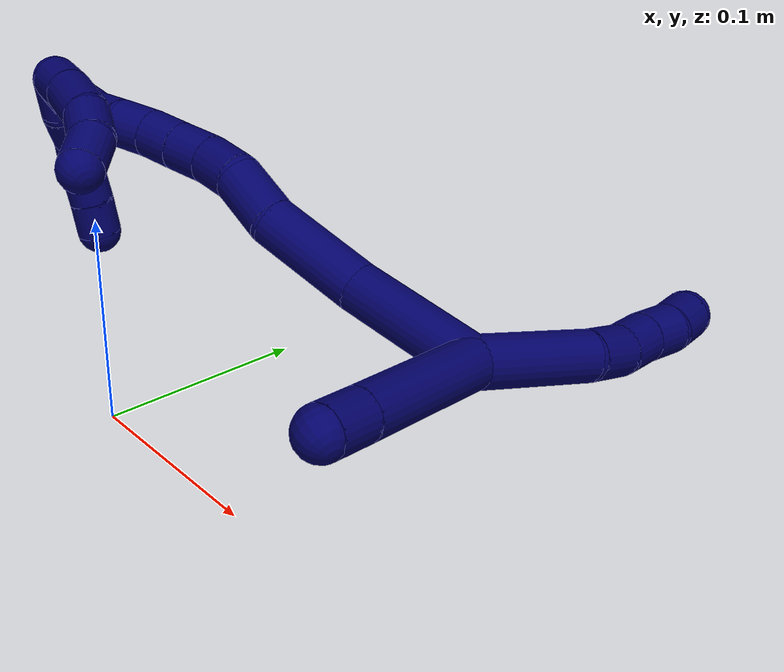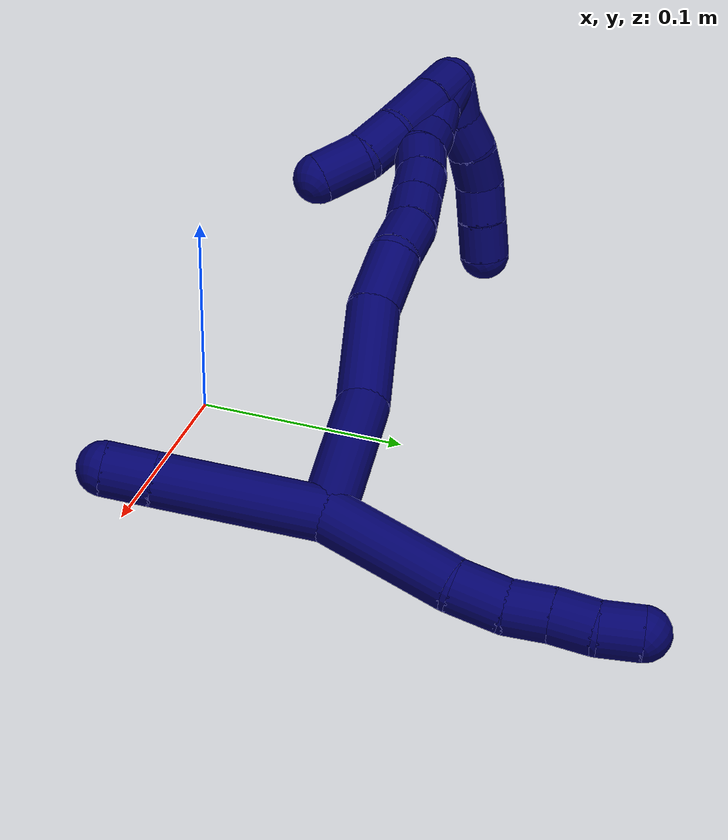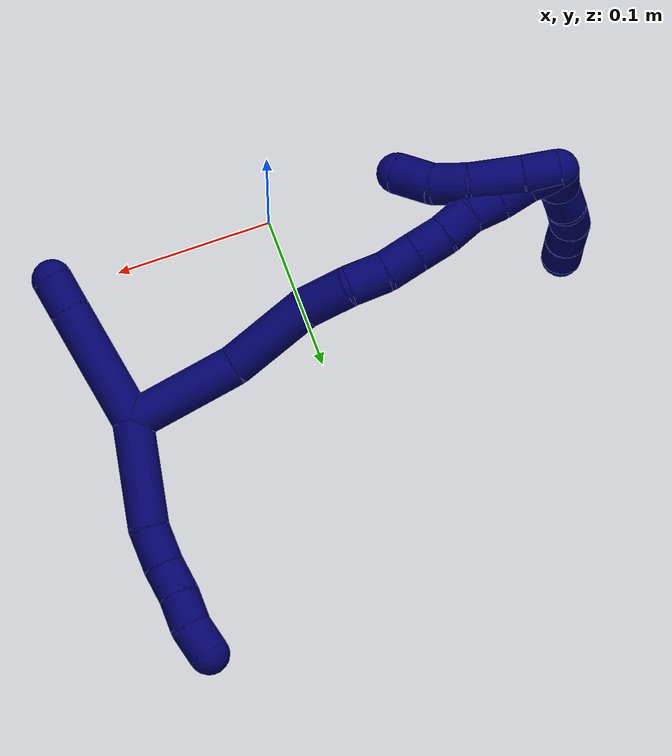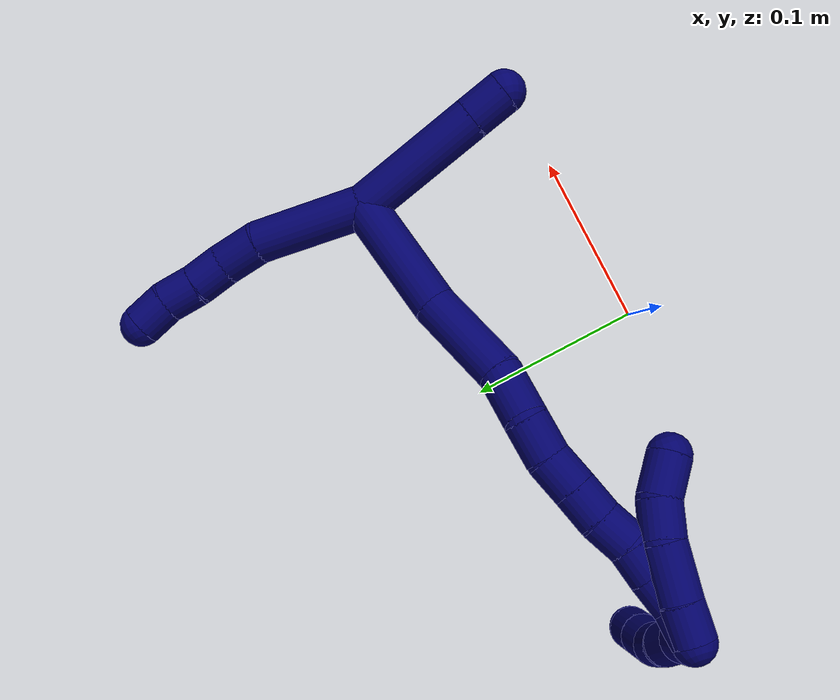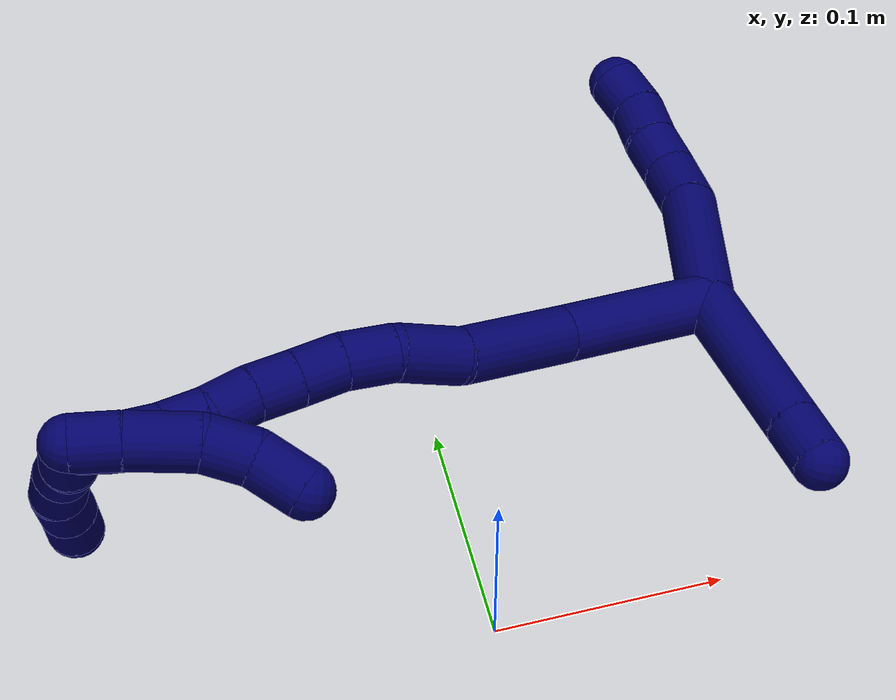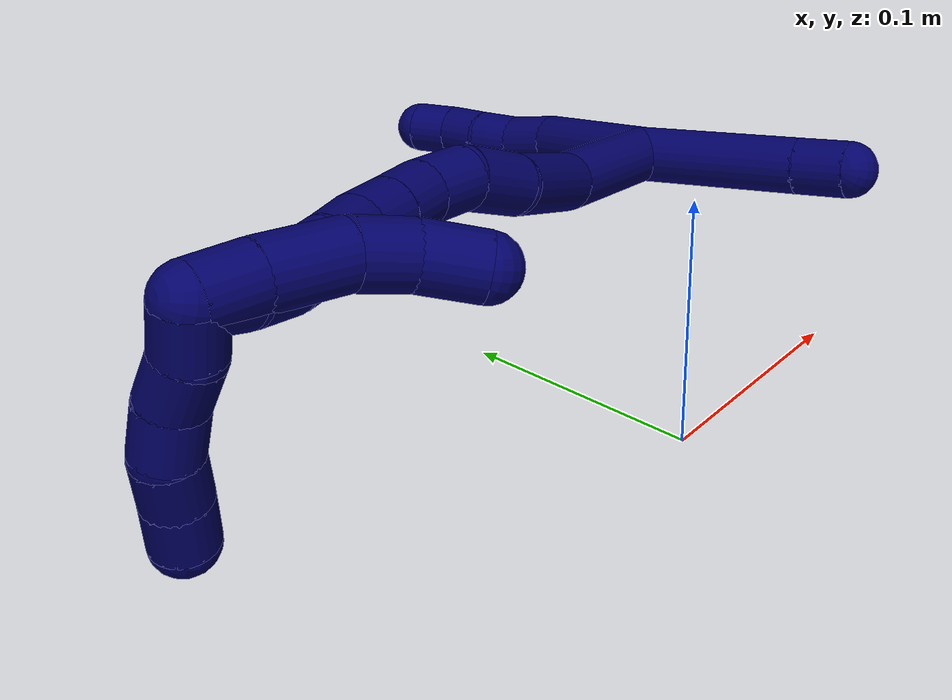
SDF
<sdf version="1.7">
 <world name="default">
  <model name="7">
   <static>0</static>
   <link name="7">
    <collision name="collision-cylinder-e_1_2_8">
     <pose>-0.017476 0.027273 -0.002906 -1.67696 -0.567305 0.627066</pose>
     <geometry><cylinder><radius>0.0125</radius><length>0.065043</length></cylinder></geometry>
     <surface>
      <friction><ode><mu>1.16</mu><mu2>1.16</mu2><slip1>0</slip1><slip2>0</slip2></ode></friction>
      <contact><ode><kp>1e+06</kp><kd>1</kd><max_vel>0</max_vel><min_depth>0.001</min_depth></ode></contact>
     </surface>
    </collision>
    <visual name="visual-cylinder-e_1_2_8">
     <pose>-0.017476 0.027273 -0.002906 -1.67696 -0.567305 0.627066</pose>
     <geometry><cylinder><radius>0.0125</radius><length>0.065043</length></cylinder></geometry>
     <material><ambient>0.003922 0 0.403922 1</ambient></material>
    </visual>
    <collision name="collision-cylinder-e_2_8_9">
     <pose>-0.042576 0.063926 -0.004488 -1.43054 -0.677659 0.594194</pose>
     <geometry><cylinder><radius>0.0125</radius><length>0.024321</length></cylinder></geometry>
     <surface>
      <friction><ode><mu>1.16</mu><mu2>1.16</mu2><slip1>0</slip1><slip2>0</slip2></ode></friction>
      <contact><ode><kp>1e+06</kp><kd>1</kd><max_vel>0</max_vel><min_depth>0.001</min_depth></ode></contact>
     </surface>
    </collision>
    <visual name="visual-cylinder-e_2_8_9">
     <pose>-0.042576 0.063926 -0.004488 -1.43054 -0.677659 0.594194</pose>
     <geometry><cylinder><radius>0.0125</radius><length>0.024321</length></cylinder></geometry>
     <material><ambient>0.003922 0 0.403922 1</ambient></material>
    </visual>
    <collision name="collision-cylinder-e_3_9_10">
     <pose>-0.055314 0.081768 -0.000454 -1.26087 -0.522233 0.385187</pose>
     <geometry><cylinder><radius>0.0125</radius><length>0.020503</length></cylinder></geometry>
     <surface>
      <friction><ode><mu>1.16</mu><mu2>1.16</mu2><slip1>0</slip1><slip2>0</slip2></ode></friction>
      <contact><ode><kp>1e+06</kp><kd>1</kd><max_vel>0</max_vel><min_depth>0.001</min_depth></ode></contact>
     </surface>
    </collision>
    <visual name="visual-cylinder-e_3_9_10">
     <pose>-0.055314 0.081768 -0.000454 -1.26087 -0.522233 0.385187</pose>
     <geometry><cylinder><radius>0.0125</radius><length>0.020503</length></cylinder></geometry>
     <material><ambient>0.003922 0 0.403922 1</ambient></material>
    </visual>
    <collision name="collision-cylinder-e_4_10_11">
     <pose>-0.065443 0.098827 0.003657 -1.4093 -0.522445 0.447011</pose>
     <geometry><cylinder><radius>0.0125</radius><length>0.020102</length></cylinder></geometry>
     <surface>
      <friction><ode><mu>1.16</mu><mu2>1.16</mu2><slip1>0</slip1><slip2>0</slip2></ode></friction>
      <contact><ode><kp>1e+06</kp><kd>1</kd><max_vel>0</max_vel><min_depth>0.001</min_depth></ode></contact>
     </surface>
    </collision>
    <visual name="visual-cylinder-e_4_10_11">
     <pose>-0.065443 0.098827 0.003657 -1.4093 -0.522445 0.447011</pose>
     <geometry><cylinder><radius>0.0125</radius><length>0.020102</length></cylinder></geometry>
     <material><ambient>0.003922 0 0.403922 1</ambient></material>
    </visual>
    <collision name="collision-cylinder-e_5_11_6">
     <pose>-0.075595 0.115248 0.008622 -1.1433 -0.538533 0.351398</pose>
     <geometry><cylinder><radius>0.0125</radius><length>0.020031</length></cylinder></geometry>
     <surface>
      <friction><ode><mu>1.16</mu><mu2>1.16</mu2><slip1>0</slip1><slip2>0</slip2></ode></friction>
      <contact><ode><kp>1e+06</kp><kd>1</kd><max_vel>0</max_vel><min_depth>0.001</min_depth></ode></contact>
     </surface>
    </collision>
    <visual name="visual-cylinder-e_5_11_6">
     <pose>-0.075595 0.115248 0.008622 -1.1433 -0.538533 0.351398</pose>
     <geometry><cylinder><radius>0.0125</radius><length>0.020031</length></cylinder></geometry>
     <material><ambient>0.003922 0 0.403922 1</ambient></material>
    </visual>
    <collision name="collision-cylinder-e_1_2_12">
     <pose>0.021342 -0.030221 -0.010755 1.91269 0.587073 0.809504</pose>
     <geometry><cylinder><radius>0.0125</radius><length>0.077058</length></cylinder></geometry>
     <surface>
      <friction><ode><mu>1.16</mu><mu2>1.16</mu2><slip1>0</slip1><slip2>0</slip2></ode></friction>
      <contact><ode><kp>1e+06</kp><kd>1</kd><max_vel>0</max_vel><min_depth>0.001</min_depth></ode></contact>
     </surface>
    </collision>
    <visual name="visual-cylinder-e_1_2_12">
     <pose>0.021342 -0.030221 -0.010755 1.91269 0.587073 0.809504</pose>
     <geometry><cylinder><radius>0.0125</radius><length>0.077058</length></cylinder></geometry>
     <material><ambient>0.003922 0 0.403922 1</ambient></material>
    </visual>
    <collision name="collision-cylinder-e_2_12_5">
     <pose>0.049088 -0.069428 -0.024645 1.90655 0.592255 0.811537</pose>
     <geometry><cylinder><radius>0.0125</radius><length>0.022942</length></cylinder></geometry>
     <surface>
      <friction><ode><mu>1.16</mu><mu2>1.16</mu2><slip1>0</slip1><slip2>0</slip2></ode></friction>
      <contact><ode><kp>1e+06</kp><kd>1</kd><max_vel>0</max_vel><min_depth>0.001</min_depth></ode></contact>
     </surface>
    </collision>
    <visual name="visual-cylinder-e_2_12_5">
     <pose>0.049088 -0.069428 -0.024645 1.90655 0.592255 0.811537</pose>
     <geometry><cylinder><radius>0.0125</radius><length>0.022942</length></cylinder></geometry>
     <material><ambient>0.003922 0 0.403922 1</ambient></material>
    </visual>
    <collision name="collision-cylinder-e_1_2_13">
     <pose>-0.001098 -0.011053 0.033033 0.322889 -0.031525 -0.005135</pose>
     <geometry><cylinder><radius>0.0125</radius><length>0.0697</length></cylinder></geometry>
     <surface>
      <friction><ode><mu>1.16</mu><mu2>1.16</mu2><slip1>0</slip1><slip2>0</slip2></ode></friction>
      <contact><ode><kp>1e+06</kp><kd>1</kd><max_vel>0</max_vel><min_depth>0.001</min_depth></ode></contact>
     </surface>
    </collision>
    <visual name="visual-cylinder-e_1_2_13">
     <pose>-0.001098 -0.011053 0.033033 0.322889 -0.031525 -0.005135</pose>
     <geometry><cylinder><radius>0.0125</radius><length>0.0697</length></cylinder></geometry>
     <material><ambient>0.003922 0 0.403922 1</ambient></material>
    </visual>
    <collision name="collision-cylinder-e_2_13_14">
     <pose>0.003301 -0.031227 0.091329 0.346501 0.201899 0.03545</pose>
     <geometry><cylinder><radius>0.0125</radius><length>0.054834</length></cylinder></geometry>
     <surface>
      <friction><ode><mu>1.16</mu><mu2>1.16</mu2><slip1>0</slip1><slip2>0</slip2></ode></friction>
      <contact><ode><kp>1e+06</kp><kd>1</kd><max_vel>0</max_vel><min_depth>0.001</min_depth></ode></contact>
     </surface>
    </collision>
    <visual name="visual-cylinder-e_2_13_14">
     <pose>0.003301 -0.031227 0.091329 0.346501 0.201899 0.03545</pose>
     <geometry><cylinder><radius>0.0125</radius><length>0.054834</length></cylinder></geometry>
     <material><ambient>0.003922 0 0.403922 1</ambient></material>
    </visual>
    <collision name="collision-cylinder-e_3_14_15">
     <pose>0.010936 -0.041847 0.131677 0.098998 0.140084 0.006951</pose>
     <geometry><cylinder><radius>0.0125</radius><length>0.030619</length></cylinder></geometry>
     <surface>
      <friction><ode><mu>1.16</mu><mu2>1.16</mu2><slip1>0</slip1><slip2>0</slip2></ode></friction>
      <contact><ode><kp>1e+06</kp><kd>1</kd><max_vel>0</max_vel><min_depth>0.001</min_depth></ode></contact>
     </surface>
    </collision>
    <visual name="visual-cylinder-e_3_14_15">
     <pose>0.010936 -0.041847 0.131677 0.098998 0.140084 0.006951</pose>
     <geometry><cylinder><radius>0.0125</radius><length>0.030619</length></cylinder></geometry>
     <material><ambient>0.003922 0 0.403922 1</ambient></material>
    </visual>
    <collision name="collision-cylinder-e_4_15_16">
     <pose>0.011372 -0.046323 0.157914 0.260918 -0.146442 -0.019248</pose>
     <geometry><cylinder><radius>0.0125</radius><length>0.023334</length></cylinder></geometry>
     <surface>
      <friction><ode><mu>1.16</mu><mu2>1.16</mu2><slip1>0</slip1><slip2>0</slip2></ode></friction>
      <contact><ode><kp>1e+06</kp><kd>1</kd><max_vel>0</max_vel><min_depth>0.001</min_depth></ode></contact>
     </surface>
    </collision>
    <visual name="visual-cylinder-e_4_15_16">
     <pose>0.011372 -0.046323 0.157914 0.260918 -0.146442 -0.019248</pose>
     <geometry><cylinder><radius>0.0125</radius><length>0.023334</length></cylinder></geometry>
     <material><ambient>0.003922 0 0.403922 1</ambient></material>
    </visual>
    <collision name="collision-cylinder-e_5_16_17">
     <pose>0.009034 -0.053868 0.178552 0.448731 -0.060208 -0.013744</pose>
     <geometry><cylinder><radius>0.0125</radius><length>0.021095</length></cylinder></geometry>
     <surface>
      <friction><ode><mu>1.16</mu><mu2>1.16</mu2><slip1>0</slip1><slip2>0</slip2></ode></friction>
      <contact><ode><kp>1e+06</kp><kd>1</kd><max_vel>0</max_vel><min_depth>0.001</min_depth></ode></contact>
     </surface>
    </collision>
    <visual name="visual-cylinder-e_5_16_17">
     <pose>0.009034 -0.053868 0.178552 0.448731 -0.060208 -0.013744</pose>
     <geometry><cylinder><radius>0.0125</radius><length>0.021095</length></cylinder></geometry>
     <material><ambient>0.003922 0 0.403922 1</ambient></material>
    </visual>
    <collision name="collision-cylinder-e_6_17_18">
     <pose>0.007727 -0.062678 0.197257 0.431299 -0.066219 -0.014511</pose>
     <geometry><cylinder><radius>0.0125</radius><length>0.020339</length></cylinder></geometry>
     <surface>
      <friction><ode><mu>1.16</mu><mu2>1.16</mu2><slip1>0</slip1><slip2>0</slip2></ode></friction>
      <contact><ode><kp>1e+06</kp><kd>1</kd><max_vel>0</max_vel><min_depth>0.001</min_depth></ode></contact>
     </surface>
    </collision>
    <visual name="visual-cylinder-e_6_17_18">
     <pose>0.007727 -0.062678 0.197257 0.431299 -0.066219 -0.014511</pose>
     <geometry><cylinder><radius>0.0125</radius><length>0.020339</length></cylinder></geometry>
     <material><ambient>0.003922 0 0.403922 1</ambient></material>
    </visual>
    <collision name="collision-cylinder-e_7_18_19">
     <pose>0.007067 -0.072311 0.214935 0.567348 0.001303 0.00038</pose>
     <geometry><cylinder><radius>0.0125</radius><length>0.020064</length></cylinder></geometry>
     <surface>
      <friction><ode><mu>1.16</mu><mu2>1.16</mu2><slip1>0</slip1><slip2>0</slip2></ode></friction>
      <contact><ode><kp>1e+06</kp><kd>1</kd><max_vel>0</max_vel><min_depth>0.001</min_depth></ode></contact>
     </surface>
    </collision>
    <visual name="visual-cylinder-e_7_18_19">
     <pose>0.007067 -0.072311 0.214935 0.567348 0.001303 0.00038</pose>
     <geometry><cylinder><radius>0.0125</radius><length>0.020064</length></cylinder></geometry>
     <material><ambient>0.003922 0 0.403922 1</ambient></material>
    </visual>
    <collision name="collision-cylinder-e_8_19_20">
     <pose>0.004828 -0.081707 0.232282 0.423393 -0.227044 -0.048996</pose>
     <geometry><cylinder><radius>0.0125</radius><length>0.020008</length></cylinder></geometry>
     <surface>
      <friction><ode><mu>1.16</mu><mu2>1.16</mu2><slip1>0</slip1><slip2>0</slip2></ode></friction>
      <contact><ode><kp>1e+06</kp><kd>1</kd><max_vel>0</max_vel><min_depth>0.001</min_depth></ode></contact>
     </surface>
    </collision>
    <visual name="visual-cylinder-e_8_19_20">
     <pose>0.004828 -0.081707 0.232282 0.423393 -0.227044 -0.048996</pose>
     <geometry><cylinder><radius>0.0125</radius><length>0.020008</length></cylinder></geometry>
     <material><ambient>0.003922 0 0.403922 1</ambient></material>
    </visual>
    <collision name="collision-cylinder-e_9_20_21">
     <pose>0.002979 -0.089002 0.250606 0.335383 0.040234 0.006812</pose>
     <geometry><cylinder><radius>0.0125</radius><length>0.020005</length></cylinder></geometry>
     <surface>
      <friction><ode><mu>1.16</mu><mu2>1.16</mu2><slip1>0</slip1><slip2>0</slip2></ode></friction>
      <contact><ode><kp>1e+06</kp><kd>1</kd><max_vel>0</max_vel><min_depth>0.001</min_depth></ode></contact>
     </surface>
    </collision>
    <visual name="visual-cylinder-e_9_20_21">
     <pose>0.002979 -0.089002 0.250606 0.335383 0.040234 0.006812</pose>
     <geometry><cylinder><radius>0.0125</radius><length>0.020005</length></cylinder></geometry>
     <material><ambient>0.003922 0 0.403922 1</ambient></material>
    </visual>
    <collision name="collision-cylinder-e_10_21_1">
     <pose>0.003232 -0.093629 0.269953 0.134187 -0.014926 -0.001003</pose>
     <geometry><cylinder><radius>0.0125</radius><length>0.020001</length></cylinder></geometry>
     <surface>
      <friction><ode><mu>1.16</mu><mu2>1.16</mu2><slip1>0</slip1><slip2>0</slip2></ode></friction>
      <contact><ode><kp>1e+06</kp><kd>1</kd><max_vel>0</max_vel><min_depth>0.001</min_depth></ode></contact>
     </surface>
    </collision>
    <visual name="visual-cylinder-e_10_21_1">
     <pose>0.003232 -0.093629 0.269953 0.134187 -0.014926 -0.001003</pose>
     <geometry><cylinder><radius>0.0125</radius><length>0.020001</length></cylinder></geometry>
     <material><ambient>0.003922 0 0.403922 1</ambient></material>
    </visual>
    <collision name="collision-cylinder-e_1_1_22">
     <pose>-0.006337 -0.096954 0.277156 2.5082 -1.22831 -2.27143</pose>
     <geometry><cylinder><radius>0.0125</radius><length>0.02</length></cylinder></geometry>
     <surface>
      <friction><ode><mu>1.16</mu><mu2>1.16</mu2><slip1>0</slip1><slip2>0</slip2></ode></friction>
      <contact><ode><kp>1e+06</kp><kd>1</kd><max_vel>0</max_vel><min_depth>0.001</min_depth></ode></contact>
     </surface>
    </collision>
    <visual name="visual-cylinder-e_1_1_22">
     <pose>-0.006337 -0.096954 0.277156 2.5082 -1.22831 -2.27143</pose>
     <geometry><cylinder><radius>0.0125</radius><length>0.02</length></cylinder></geometry>
     <material><ambient>0.003922 0 0.403922 1</ambient></material>
    </visual>
    <collision name="collision-cylinder-e_2_22_23">
     <pose>-0.025713 -0.099135 0.273539 2.93287 -1.47761 -2.91263</pose>
     <geometry><cylinder><radius>0.0125</radius><length>0.02</length></cylinder></geometry>
     <surface>
      <friction><ode><mu>1.16</mu><mu2>1.16</mu2><slip1>0</slip1><slip2>0</slip2></ode></friction>
      <contact><ode><kp>1e+06</kp><kd>1</kd><max_vel>0</max_vel><min_depth>0.001</min_depth></ode></contact>
     </surface>
    </collision>
    <visual name="visual-cylinder-e_2_22_23">
     <pose>-0.025713 -0.099135 0.273539 2.93287 -1.47761 -2.91263</pose>
     <geometry><cylinder><radius>0.0125</radius><length>0.02</length></cylinder></geometry>
     <material><ambient>0.003922 0 0.403922 1</ambient></material>
    </visual>
    <collision name="collision-cylinder-e_3_23_24">
     <pose>-0.045282 -0.10153 0.27097 2.21632 -1.29145 -1.97219</pose>
     <geometry><cylinder><radius>0.0125</radius><length>0.02</length></cylinder></geometry>
     <surface>
      <friction><ode><mu>1.16</mu><mu2>1.16</mu2><slip1>0</slip1><slip2>0</slip2></ode></friction>
      <contact><ode><kp>1e+06</kp><kd>1</kd><max_vel>0</max_vel><min_depth>0.001</min_depth></ode></contact>
     </surface>
    </collision>
    <visual name="visual-cylinder-e_3_23_24">
     <pose>-0.045282 -0.10153 0.27097 2.21632 -1.29145 -1.97219</pose>
     <geometry><cylinder><radius>0.0125</radius><length>0.02</length></cylinder></geometry>
     <material><ambient>0.003922 0 0.403922 1</ambient></material>
    </visual>
    <collision name="collision-cylinder-e_4_24_25">
     <pose>-0.063728 -0.105481 0.264964 2.75917 -1.08315 -2.51895</pose>
     <geometry><cylinder><radius>0.0125</radius><length>0.02</length></cylinder></geometry>
     <surface>
      <friction><ode><mu>1.16</mu><mu2>1.16</mu2><slip1>0</slip1><slip2>0</slip2></ode></friction>
      <contact><ode><kp>1e+06</kp><kd>1</kd><max_vel>0</max_vel><min_depth>0.001</min_depth></ode></contact>
     </surface>
    </collision>
    <visual name="visual-cylinder-e_4_24_25">
     <pose>-0.063728 -0.105481 0.264964 2.75917 -1.08315 -2.51895</pose>
     <geometry><cylinder><radius>0.0125</radius><length>0.02</length></cylinder></geometry>
     <material><ambient>0.003922 0 0.403922 1</ambient></material>
    </visual>
    <collision name="collision-cylinder-e_5_25_4">
     <pose>-0.0815 -0.10929 0.256631 2.66449 -1.10547 -2.39057</pose>
     <geometry><cylinder><radius>0.0125</radius><length>0.02</length></cylinder></geometry>
     <surface>
      <friction><ode><mu>1.16</mu><mu2>1.16</mu2><slip1>0</slip1><slip2>0</slip2></ode></friction>
      <contact><ode><kp>1e+06</kp><kd>1</kd><max_vel>0</max_vel><min_depth>0.001</min_depth></ode></contact>
     </surface>
    </collision>
    <visual name="visual-cylinder-e_5_25_4">
     <pose>-0.0815 -0.10929 0.256631 2.66449 -1.10547 -2.39057</pose>
     <geometry><cylinder><radius>0.0125</radius><length>0.02</length></cylinder></geometry>
     <material><ambient>0.003922 0 0.403922 1</ambient></material>
    </visual>
    <collision name="collision-cylinder-e_1_1_26">
     <pose>0.006191 -0.093729 0.269524 -3.02242 0.290163 -2.36629</pose>
     <geometry><cylinder><radius>0.0125</radius><length>0.021734</length></cylinder></geometry>
     <surface>
      <friction><ode><mu>1.16</mu><mu2>1.16</mu2><slip1>0</slip1><slip2>0</slip2></ode></friction>
      <contact><ode><kp>1e+06</kp><kd>1</kd><max_vel>0</max_vel><min_depth>0.001</min_depth></ode></contact>
     </surface>
    </collision>
    <visual name="visual-cylinder-e_1_1_26">
     <pose>0.006191 -0.093729 0.269524 -3.02242 0.290163 -2.36629</pose>
     <geometry><cylinder><radius>0.0125</radius><length>0.021734</length></cylinder></geometry>
     <material><ambient>0.003922 0 0.403922 1</ambient></material>
    </visual>
    <collision name="collision-cylinder-e_2_26_27">
     <pose>0.013404 -0.091922 0.243793 -3.10469 0.260388 -2.86158</pose>
     <geometry><cylinder><radius>0.0125</radius><length>0.03188</length></cylinder></geometry>
     <surface>
      <friction><ode><mu>1.16</mu><mu2>1.16</mu2><slip1>0</slip1><slip2>0</slip2></ode></friction>
      <contact><ode><kp>1e+06</kp><kd>1</kd><max_vel>0</max_vel><min_depth>0.001</min_depth></ode></contact>
     </surface>
    </collision>
    <visual name="visual-cylinder-e_2_26_27">
     <pose>0.013404 -0.091922 0.243793 -3.10469 0.260388 -2.86158</pose>
     <geometry><cylinder><radius>0.0125</radius><length>0.03188</length></cylinder></geometry>
     <material><ambient>0.003922 0 0.403922 1</ambient></material>
    </visual>
    <collision name="collision-cylinder-e_3_27_28">
     <pose>0.019247 -0.093634 0.217724 2.93123 0.157951 1.28653</pose>
     <geometry><cylinder><radius>0.0125</radius><length>0.02211</length></cylinder></geometry>
     <surface>
      <friction><ode><mu>1.16</mu><mu2>1.16</mu2><slip1>0</slip1><slip2>0</slip2></ode></friction>
      <contact><ode><kp>1e+06</kp><kd>1</kd><max_vel>0</max_vel><min_depth>0.001</min_depth></ode></contact>
     </surface>
    </collision>
    <visual name="visual-cylinder-e_3_27_28">
     <pose>0.019247 -0.093634 0.217724 2.93123 0.157951 1.28653</pose>
     <geometry><cylinder><radius>0.0125</radius><length>0.02211</length></cylinder></geometry>
     <material><ambient>0.003922 0 0.403922 1</ambient></material>
    </visual>
    <collision name="collision-cylinder-e_4_28_3">
     <pose>0.023753 -0.102023 0.19693 2.59831 0.229974 0.786181</pose>
     <geometry><cylinder><radius>0.0125</radius><length>0.024276</length></cylinder></geometry>
     <surface>
      <friction><ode><mu>1.16</mu><mu2>1.16</mu2><slip1>0</slip1><slip2>0</slip2></ode></friction>
      <contact><ode><kp>1e+06</kp><kd>1</kd><max_vel>0</max_vel><min_depth>0.001</min_depth></ode></contact>
     </surface>
    </collision>
    <visual name="visual-cylinder-e_4_28_3">
     <pose>0.023753 -0.102023 0.19693 2.59831 0.229974 0.786181</pose>
     <geometry><cylinder><radius>0.0125</radius><length>0.024276</length></cylinder></geometry>
     <material><ambient>0.003922 0 0.403922 1</ambient></material>
    </visual>
    <collision name="collision-sphere-3">
     <pose>0.02652 -0.108132 0.186814 0 -0 0</pose>
     <geometry><sphere><radius>0.0125</radius></sphere></geometry>
     <surface>
      <friction><ode><mu>1.16</mu><mu2>1.16</mu2><slip1>0</slip1><slip2>0</slip2></ode></friction>
      <contact><ode><kp>1e+06</kp><kd>1</kd><max_vel>0</max_vel><min_depth>0.001</min_depth></ode></contact>
     </surface>
    </collision>
    <visual name="visual-sphere-3">
     <pose>0.02652 -0.108132 0.186814 0 -0 0</pose>
     <geometry><sphere><radius>0.0125</radius></sphere></geometry>
     <material><ambient>0.003922 0 0.403922 1</ambient></material>
    </visual>
    <collision name="collision-sphere-28">
     <pose>0.020986 -0.095914 0.207047 0 -0 0</pose>
     <geometry><sphere><radius>0.0125</radius></sphere></geometry>
     <surface>
      <friction><ode><mu>1.16</mu><mu2>1.16</mu2><slip1>0</slip1><slip2>0</slip2></ode></friction>
      <contact><ode><kp>1e+06</kp><kd>1</kd><max_vel>0</max_vel><min_depth>0.001</min_depth></ode></contact>
     </surface>
    </collision>
    <visual name="visual-sphere-28">
     <pose>0.020986 -0.095914 0.207047 0 -0 0</pose>
     <geometry><sphere><radius>0.0125</radius></sphere></geometry>
     <material><ambient>0.003922 0 0.403922 1</ambient></material>
    </visual>
    <collision name="collision-sphere-27">
     <pose>0.017508 -0.091354 0.228401 0 -0 0</pose>
     <geometry><sphere><radius>0.0125</radius></sphere></geometry>
     <surface>
      <friction><ode><mu>1.16</mu><mu2>1.16</mu2><slip1>0</slip1><slip2>0</slip2></ode></friction>
      <contact><ode><kp>1e+06</kp><kd>1</kd><max_vel>0</max_vel><min_depth>0.001</min_depth></ode></contact>
     </surface>
    </collision>
    <visual name="visual-sphere-27">
     <pose>0.017508 -0.091354 0.228401 0 -0 0</pose>
     <geometry><sphere><radius>0.0125</radius></sphere></geometry>
     <material><ambient>0.003922 0 0.403922 1</ambient></material>
    </visual>
    <collision name="collision-sphere-26">
     <pose>0.0093 -0.092491 0.259186 0 -0 0</pose>
     <geometry><sphere><radius>0.0125</radius></sphere></geometry>
     <surface>
      <friction><ode><mu>1.16</mu><mu2>1.16</mu2><slip1>0</slip1><slip2>0</slip2></ode></friction>
      <contact><ode><kp>1e+06</kp><kd>1</kd><max_vel>0</max_vel><min_depth>0.001</min_depth></ode></contact>
     </surface>
    </collision>
    <visual name="visual-sphere-26">
     <pose>0.0093 -0.092491 0.259186 0 -0 0</pose>
     <geometry><sphere><radius>0.0125</radius></sphere></geometry>
     <material><ambient>0.003922 0 0.403922 1</ambient></material>
    </visual>
    <collision name="collision-sphere-4">
     <pose>-0.090436 -0.111351 0.252645 0 -0 0</pose>
     <geometry><sphere><radius>0.0125</radius></sphere></geometry>
     <surface>
      <friction><ode><mu>1.16</mu><mu2>1.16</mu2><slip1>0</slip1><slip2>0</slip2></ode></friction>
      <contact><ode><kp>1e+06</kp><kd>1</kd><max_vel>0</max_vel><min_depth>0.001</min_depth></ode></contact>
     </surface>
    </collision>
    <visual name="visual-sphere-4">
     <pose>-0.090436 -0.111351 0.252645 0 -0 0</pose>
     <geometry><sphere><radius>0.0125</radius></sphere></geometry>
     <material><ambient>0.003922 0 0.403922 1</ambient></material>
    </visual>
    <collision name="collision-sphere-25">
     <pose>-0.072563 -0.10723 0.260617 0 -0 0</pose>
     <geometry><sphere><radius>0.0125</radius></sphere></geometry>
     <surface>
      <friction><ode><mu>1.16</mu><mu2>1.16</mu2><slip1>0</slip1><slip2>0</slip2></ode></friction>
      <contact><ode><kp>1e+06</kp><kd>1</kd><max_vel>0</max_vel><min_depth>0.001</min_depth></ode></contact>
     </surface>
    </collision>
    <visual name="visual-sphere-25">
     <pose>-0.072563 -0.10723 0.260617 0 -0 0</pose>
     <geometry><sphere><radius>0.0125</radius></sphere></geometry>
     <material><ambient>0.003922 0 0.403922 1</ambient></material>
    </visual>
    <collision name="collision-sphere-24">
     <pose>-0.054894 -0.103733 0.269311 0 -0 0</pose>
     <geometry><sphere><radius>0.0125</radius></sphere></geometry>
     <surface>
      <friction><ode><mu>1.16</mu><mu2>1.16</mu2><slip1>0</slip1><slip2>0</slip2></ode></friction>
      <contact><ode><kp>1e+06</kp><kd>1</kd><max_vel>0</max_vel><min_depth>0.001</min_depth></ode></contact>
     </surface>
    </collision>
    <visual name="visual-sphere-24">
     <pose>-0.054894 -0.103733 0.269311 0 -0 0</pose>
     <geometry><sphere><radius>0.0125</radius></sphere></geometry>
     <material><ambient>0.003922 0 0.403922 1</ambient></material>
    </visual>
    <collision name="collision-sphere-23">
     <pose>-0.035669 -0.099328 0.272628 0 -0 0</pose>
     <geometry><sphere><radius>0.0125</radius></sphere></geometry>
     <surface>
      <friction><ode><mu>1.16</mu><mu2>1.16</mu2><slip1>0</slip1><slip2>0</slip2></ode></friction>
      <contact><ode><kp>1e+06</kp><kd>1</kd><max_vel>0</max_vel><min_depth>0.001</min_depth></ode></contact>
     </surface>
    </collision>
    <visual name="visual-sphere-23">
     <pose>-0.035669 -0.099328 0.272628 0 -0 0</pose>
     <geometry><sphere><radius>0.0125</radius></sphere></geometry>
     <material><ambient>0.003922 0 0.403922 1</ambient></material>
    </visual>
    <collision name="collision-sphere-22">
     <pose>-0.015756 -0.098942 0.274449 0 -0 0</pose>
     <geometry><sphere><radius>0.0125</radius></sphere></geometry>
     <surface>
      <friction><ode><mu>1.16</mu><mu2>1.16</mu2><slip1>0</slip1><slip2>0</slip2></ode></friction>
      <contact><ode><kp>1e+06</kp><kd>1</kd><max_vel>0</max_vel><min_depth>0.001</min_depth></ode></contact>
     </surface>
    </collision>
    <visual name="visual-sphere-22">
     <pose>-0.015756 -0.098942 0.274449 0 -0 0</pose>
     <geometry><sphere><radius>0.0125</radius></sphere></geometry>
     <material><ambient>0.003922 0 0.403922 1</ambient></material>
    </visual>
    <collision name="collision-sphere-1">
     <pose>0.003082 -0.094967 0.279863 0 -0 0</pose>
     <geometry><sphere><radius>0.0125</radius></sphere></geometry>
     <surface>
      <friction><ode><mu>1.16</mu><mu2>1.16</mu2><slip1>0</slip1><slip2>0</slip2></ode></friction>
      <contact><ode><kp>1e+06</kp><kd>1</kd><max_vel>0</max_vel><min_depth>0.001</min_depth></ode></contact>
     </surface>
    </collision>
    <visual name="visual-sphere-1">
     <pose>0.003082 -0.094967 0.279863 0 -0 0</pose>
     <geometry><sphere><radius>0.0125</radius></sphere></geometry>
     <material><ambient>0.003922 0 0.403922 1</ambient></material>
    </visual>
    <collision name="collision-sphere-21">
     <pose>0.003381 -0.092291 0.260044 0 -0 0</pose>
     <geometry><sphere><radius>0.0125</radius></sphere></geometry>
     <surface>
      <friction><ode><mu>1.16</mu><mu2>1.16</mu2><slip1>0</slip1><slip2>0</slip2></ode></friction>
      <contact><ode><kp>1e+06</kp><kd>1</kd><max_vel>0</max_vel><min_depth>0.001</min_depth></ode></contact>
     </surface>
    </collision>
    <visual name="visual-sphere-21">
     <pose>0.003381 -0.092291 0.260044 0 -0 0</pose>
     <geometry><sphere><radius>0.0125</radius></sphere></geometry>
     <material><ambient>0.003922 0 0.403922 1</ambient></material>
    </visual>
    <collision name="collision-sphere-6">
     <pose>-0.080732 0.123072 0.012187 0 -0 0</pose>
     <geometry><sphere><radius>0.0125</radius></sphere></geometry>
     <surface>
      <friction><ode><mu>1.16</mu><mu2>1.16</mu2><slip1>0</slip1><slip2>0</slip2></ode></friction>
      <contact><ode><kp>1e+06</kp><kd>1</kd><max_vel>0</max_vel><min_depth>0.001</min_depth></ode></contact>
     </surface>
    </collision>
    <visual name="visual-sphere-6">
     <pose>-0.080732 0.123072 0.012187 0 -0 0</pose>
     <geometry><sphere><radius>0.0125</radius></sphere></geometry>
     <material><ambient>0.003922 0 0.403922 1</ambient></material>
    </visual>
    <collision name="collision-sphere-11">
     <pose>-0.070458 0.107424 0.005057 0 -0 0</pose>
     <geometry><sphere><radius>0.0125</radius></sphere></geometry>
     <surface>
      <friction><ode><mu>1.16</mu><mu2>1.16</mu2><slip1>0</slip1><slip2>0</slip2></ode></friction>
      <contact><ode><kp>1e+06</kp><kd>1</kd><max_vel>0</max_vel><min_depth>0.001</min_depth></ode></contact>
     </surface>
    </collision>
    <visual name="visual-sphere-11">
     <pose>-0.070458 0.107424 0.005057 0 -0 0</pose>
     <geometry><sphere><radius>0.0125</radius></sphere></geometry>
     <material><ambient>0.003922 0 0.403922 1</ambient></material>
    </visual>
    <collision name="collision-sphere-10">
     <pose>-0.060428 0.09023 0.002256 0 -0 0</pose>
     <geometry><sphere><radius>0.0125</radius></sphere></geometry>
     <surface>
      <friction><ode><mu>1.16</mu><mu2>1.16</mu2><slip1>0</slip1><slip2>0</slip2></ode></friction>
      <contact><ode><kp>1e+06</kp><kd>1</kd><max_vel>0</max_vel><min_depth>0.001</min_depth></ode></contact>
     </surface>
    </collision>
    <visual name="visual-sphere-10">
     <pose>-0.060428 0.09023 0.002256 0 -0 0</pose>
     <geometry><sphere><radius>0.0125</radius></sphere></geometry>
     <material><ambient>0.003922 0 0.403922 1</ambient></material>
    </visual>
    <collision name="collision-sphere-9">
     <pose>-0.0502 0.073306 -0.003164 0 -0 0</pose>
     <geometry><sphere><radius>0.0125</radius></sphere></geometry>
     <surface>
      <friction><ode><mu>1.16</mu><mu2>1.16</mu2><slip1>0</slip1><slip2>0</slip2></ode></friction>
      <contact><ode><kp>1e+06</kp><kd>1</kd><max_vel>0</max_vel><min_depth>0.001</min_depth></ode></contact>
     </surface>
    </collision>
    <visual name="visual-sphere-9">
     <pose>-0.0502 0.073306 -0.003164 0 -0 0</pose>
     <geometry><sphere><radius>0.0125</radius></sphere></geometry>
     <material><ambient>0.003922 0 0.403922 1</ambient></material>
    </visual>
    <collision name="collision-sphere-2">
     <geometry><sphere><radius>0.0125</radius></sphere></geometry>
     <surface>
      <friction><ode><mu>1.16</mu><mu2>1.16</mu2><slip1>0</slip1><slip2>0</slip2></ode></friction>
      <contact><ode><kp>1e+06</kp><kd>1</kd><max_vel>0</max_vel><min_depth>0.001</min_depth></ode></contact>
     </surface>
    </collision>
    <visual name="visual-sphere-2">
     <geometry><sphere><radius>0.0125</radius></sphere></geometry>
     <material><ambient>0.003922 0 0.403922 1</ambient></material>
    </visual>
    <collision name="collision-sphere-19">
     <pose>0.00708 -0.077703 0.223395 0 -0 0</pose>
     <geometry><sphere><radius>0.0125</radius></sphere></geometry>
     <surface>
      <friction><ode><mu>1.16</mu><mu2>1.16</mu2><slip1>0</slip1><slip2>0</slip2></ode></friction>
      <contact><ode><kp>1e+06</kp><kd>1</kd><max_vel>0</max_vel><min_depth>0.001</min_depth></ode></contact>
     </surface>
    </collision>
    <visual name="visual-sphere-19">
     <pose>0.00708 -0.077703 0.223395 0 -0 0</pose>
     <geometry><sphere><radius>0.0125</radius></sphere></geometry>
     <material><ambient>0.003922 0 0.403922 1</ambient></material>
    </visual>
    <collision name="collision-sphere-8">
     <pose>-0.034951 0.054545 -0.005812 0 -0 0</pose>
     <geometry><sphere><radius>0.0125</radius></sphere></geometry>
     <surface>
      <friction><ode><mu>1.16</mu><mu2>1.16</mu2><slip1>0</slip1><slip2>0</slip2></ode></friction>
      <contact><ode><kp>1e+06</kp><kd>1</kd><max_vel>0</max_vel><min_depth>0.001</min_depth></ode></contact>
     </surface>
    </collision>
    <visual name="visual-sphere-8">
     <pose>-0.034951 0.054545 -0.005812 0 -0 0</pose>
     <geometry><sphere><radius>0.0125</radius></sphere></geometry>
     <material><ambient>0.003922 0 0.403922 1</ambient></material>
    </visual>
    <collision name="collision-sphere-12">
     <pose>0.042684 -0.060442 -0.02151 0 -0 0</pose>
     <geometry><sphere><radius>0.0125</radius></sphere></geometry>
     <surface>
      <friction><ode><mu>1.16</mu><mu2>1.16</mu2><slip1>0</slip1><slip2>0</slip2></ode></friction>
      <contact><ode><kp>1e+06</kp><kd>1</kd><max_vel>0</max_vel><min_depth>0.001</min_depth></ode></contact>
     </surface>
    </collision>
    <visual name="visual-sphere-12">
     <pose>0.042684 -0.060442 -0.02151 0 -0 0</pose>
     <geometry><sphere><radius>0.0125</radius></sphere></geometry>
     <material><ambient>0.003922 0 0.403922 1</ambient></material>
    </visual>
    <collision name="collision-sphere-5">
     <pose>0.055491 -0.078414 -0.027781 0 -0 0</pose>
     <geometry><sphere><radius>0.0125</radius></sphere></geometry>
     <surface>
      <friction><ode><mu>1.16</mu><mu2>1.16</mu2><slip1>0</slip1><slip2>0</slip2></ode></friction>
      <contact><ode><kp>1e+06</kp><kd>1</kd><max_vel>0</max_vel><min_depth>0.001</min_depth></ode></contact>
     </surface>
    </collision>
    <visual name="visual-sphere-5">
     <pose>0.055491 -0.078414 -0.027781 0 -0 0</pose>
     <geometry><sphere><radius>0.0125</radius></sphere></geometry>
     <material><ambient>0.003922 0 0.403922 1</ambient></material>
    </visual>
    <collision name="collision-sphere-13">
     <pose>-0.002197 -0.022105 0.066065 0 -0 0</pose>
     <geometry><sphere><radius>0.0125</radius></sphere></geometry>
     <surface>
      <friction><ode><mu>1.16</mu><mu2>1.16</mu2><slip1>0</slip1><slip2>0</slip2></ode></friction>
      <contact><ode><kp>1e+06</kp><kd>1</kd><max_vel>0</max_vel><min_depth>0.001</min_depth></ode></contact>
     </surface>
    </collision>
    <visual name="visual-sphere-13">
     <pose>-0.002197 -0.022105 0.066065 0 -0 0</pose>
     <geometry><sphere><radius>0.0125</radius></sphere></geometry>
     <material><ambient>0.003922 0 0.403922 1</ambient></material>
    </visual>
    <collision name="collision-sphere-14">
     <pose>0.008799 -0.040349 0.116592 0 -0 0</pose>
     <geometry><sphere><radius>0.0125</radius></sphere></geometry>
     <surface>
      <friction><ode><mu>1.16</mu><mu2>1.16</mu2><slip1>0</slip1><slip2>0</slip2></ode></friction>
      <contact><ode><kp>1e+06</kp><kd>1</kd><max_vel>0</max_vel><min_depth>0.001</min_depth></ode></contact>
     </surface>
    </collision>
    <visual name="visual-sphere-14">
     <pose>0.008799 -0.040349 0.116592 0 -0 0</pose>
     <geometry><sphere><radius>0.0125</radius></sphere></geometry>
     <material><ambient>0.003922 0 0.403922 1</ambient></material>
    </visual>
    <collision name="collision-sphere-15">
     <pose>0.013074 -0.043346 0.146763 0 -0 0</pose>
     <geometry><sphere><radius>0.0125</radius></sphere></geometry>
     <surface>
      <friction><ode><mu>1.16</mu><mu2>1.16</mu2><slip1>0</slip1><slip2>0</slip2></ode></friction>
      <contact><ode><kp>1e+06</kp><kd>1</kd><max_vel>0</max_vel><min_depth>0.001</min_depth></ode></contact>
     </surface>
    </collision>
    <visual name="visual-sphere-15">
     <pose>0.013074 -0.043346 0.146763 0 -0 0</pose>
     <geometry><sphere><radius>0.0125</radius></sphere></geometry>
     <material><ambient>0.003922 0 0.403922 1</ambient></material>
    </visual>
    <collision name="collision-sphere-16">
     <pose>0.009669 -0.049301 0.169066 0 -0 0</pose>
     <geometry><sphere><radius>0.0125</radius></sphere></geometry>
     <surface>
      <friction><ode><mu>1.16</mu><mu2>1.16</mu2><slip1>0</slip1><slip2>0</slip2></ode></friction>
      <contact><ode><kp>1e+06</kp><kd>1</kd><max_vel>0</max_vel><min_depth>0.001</min_depth></ode></contact>
     </surface>
    </collision>
    <visual name="visual-sphere-16">
     <pose>0.009669 -0.049301 0.169066 0 -0 0</pose>
     <geometry><sphere><radius>0.0125</radius></sphere></geometry>
     <material><ambient>0.003922 0 0.403922 1</ambient></material>
    </visual>
    <collision name="collision-sphere-17">
     <pose>0.0084 -0.058436 0.188038 0 -0 0</pose>
     <geometry><sphere><radius>0.0125</radius></sphere></geometry>
     <surface>
      <friction><ode><mu>1.16</mu><mu2>1.16</mu2><slip1>0</slip1><slip2>0</slip2></ode></friction>
      <contact><ode><kp>1e+06</kp><kd>1</kd><max_vel>0</max_vel><min_depth>0.001</min_depth></ode></contact>
     </surface>
    </collision>
    <visual name="visual-sphere-17">
     <pose>0.0084 -0.058436 0.188038 0 -0 0</pose>
     <geometry><sphere><radius>0.0125</radius></sphere></geometry>
     <material><ambient>0.003922 0 0.403922 1</ambient></material>
    </visual>
    <collision name="collision-sphere-18">
     <pose>0.007054 -0.06692 0.206475 0 -0 0</pose>
     <geometry><sphere><radius>0.0125</radius></sphere></geometry>
     <surface>
      <friction><ode><mu>1.16</mu><mu2>1.16</mu2><slip1>0</slip1><slip2>0</slip2></ode></friction>
      <contact><ode><kp>1e+06</kp><kd>1</kd><max_vel>0</max_vel><min_depth>0.001</min_depth></ode></contact>
     </surface>
    </collision>
    <visual name="visual-sphere-18">
     <pose>0.007054 -0.06692 0.206475 0 -0 0</pose>
     <geometry><sphere><radius>0.0125</radius></sphere></geometry>
     <material><ambient>0.003922 0 0.403922 1</ambient></material>
    </visual>
    <collision name="collision-sphere-20">
     <pose>0.002576 -0.085712 0.241169 0 -0 0</pose>
     <geometry><sphere><radius>0.0125</radius></sphere></geometry>
     <surface>
      <friction><ode><mu>1.16</mu><mu2>1.16</mu2><slip1>0</slip1><slip2>0</slip2></ode></friction>
      <contact><ode><kp>1e+06</kp><kd>1</kd><max_vel>0</max_vel><min_depth>0.001</min_depth></ode></contact>
     </surface>
    </collision>
    <visual name="visual-sphere-20">
     <pose>0.002576 -0.085712 0.241169 0 -0 0</pose>
     <geometry><sphere><radius>0.0125</radius></sphere></geometry>
     <material><ambient>0.003922 0 0.403922 1</ambient></material>
    </visual>
    <inertial>
     <pose>-0.00645 -0.037838 0.121084 0 -0 0</pose>
     <mass>0.75</mass>
     <inertia>
      <ixx>0.000137</ixx>
      <ixy>0</ixy>
      <ixz>0</ixz>
      <iyy>0.000118</iyy>
      <iyz>0</iyz>
      <izz>3.6e-05</izz>
     </inertia>
    </inertial>
   </link>
   <pose>0.125133 0.110576 0.044732 0.795526 -1.07448 -1.02709</pose>
  </model>
 </world>
</sdf>
